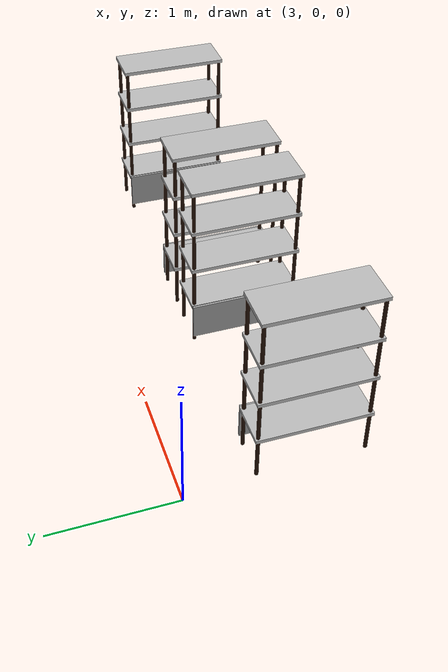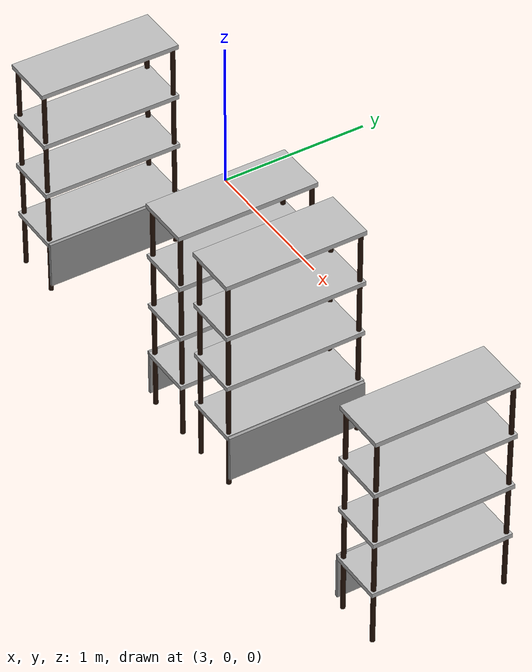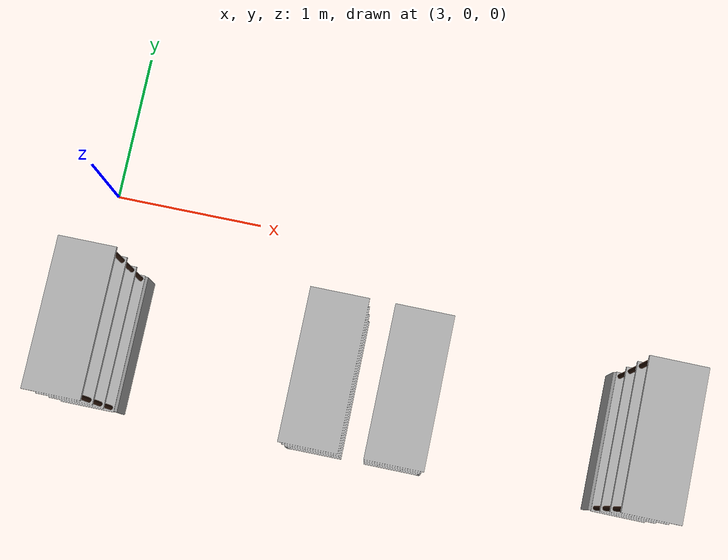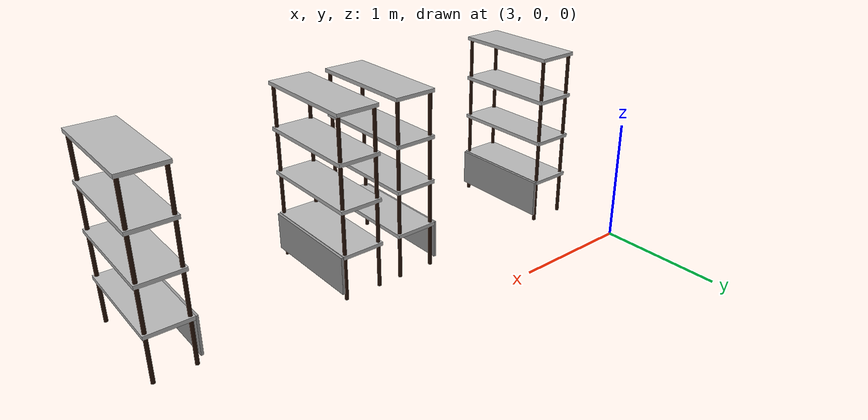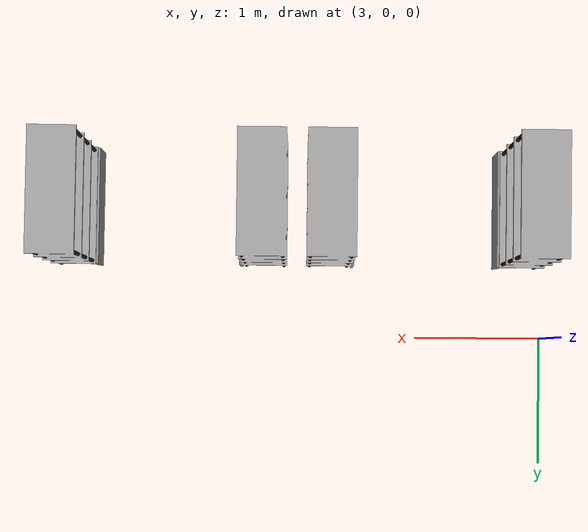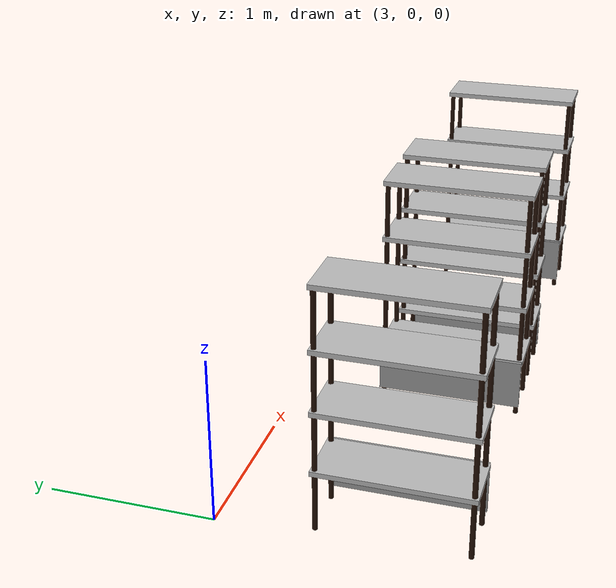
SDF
<sdf version="1.7">
 <world name="default">
  <model name="rack_0">
   <link name="link">
    <inertial>
     <mass>0.1</mass>
     <inertia><ixx>0.01857</ixx><ixy>0</ixy><ixz>0</ixz><iyy>0.015598</iyy><iyz>0</iyz><izz>0.00305</izz></inertia>
    </inertial>
    <visual name="visual1">
     <cast_shadows>0</cast_shadows>
     <geometry><mesh><uri>model://rack/meshes/rack.dae</uri></mesh></geometry>
     <material>
      <shader type="pixel"><normal_map>__default__</normal_map></shader>
      <emissive>0 0 0 1</emissive>
     </material>
    </visual>
    <visual name="visual_2">
     <cast_shadows>0</cast_shadows>
     <geometry><box><size>0.02 0.9 0.31</size></box></geometry>
     <material>
      <lighting>1</lighting>
      <script><uri>file://media/materials/scripts/gazebo.material</uri><name>Gazebo/Grey</name></script>
      <shader type="pixel"><normal_map>__default__</normal_map></shader>
      <ambient>0.3 0.3 0.3 1</ambient>
      <diffuse>0.7 0.7 0.7 1</diffuse>
      <specular>0.01 0.01 0.01 1</specular>
      <emissive>0 0 0 1</emissive>
     </material>
     <pose>-0.185 0 0.22 0 -0 0</pose>
    </visual>
    <collision name="collision_7">
     <pose>0 0 0.36 0 1.57 1.57</pose>
     <geometry><box><size>0.05 0.35 0.91</size></box></geometry>
     <surface>
      <friction>
       <ode><mu>1</mu><mu2>1</mu2><fdir1>0 0 0</fdir1><slip1>0</slip1><slip2>0</slip2></ode>
       <torsional>
        <coefficient>1</coefficient>
        <patch_radius>0</patch_radius>
        <surface_radius>0</surface_radius>
        <use_patch_radius>1</use_patch_radius>
        <ode><slip>0</slip></ode>
       </torsional>
      </friction>
      <bounce><restitution_coefficient>0</restitution_coefficient><threshold>1e+06</threshold></bounce>
      <contact>
       <collide_without_contact>0</collide_without_contact>
       <collide_without_contact_bitmask>1</collide_without_contact_bitmask>
       <collide_bitmask>1</collide_bitmask>
       <ode>
        <soft_cfm>0</soft_cfm>
        <soft_erp>0.2</soft_erp>
        <kp>1e+15</kp>
        <kd>1e+13</kd>
        <max_vel>0.01</max_vel>
        <min_depth>0</min_depth>
       </ode>
       <bullet>
        <split_impulse>1</split_impulse>
        <split_impulse_penetration_threshold>-0.01</split_impulse_penetration_threshold>
        <soft_cfm>0</soft_cfm>
        <soft_erp>0.2</soft_erp>
        <kp>1e+13</kp>
        <kd>1</kd>
       </bullet>
      </contact>
     </surface>
    </collision>
    <collision name="collision_6">
     <pose>0 0 0.725 0 1.57 1.57</pose>
     <geometry><box><size>0.05 0.35 0.91</size></box></geometry>
     <surface>
      <friction>
       <ode><mu>1</mu><mu2>1</mu2><fdir1>0 0 0</fdir1><slip1>0</slip1><slip2>0</slip2></ode>
       <torsional>
        <coefficient>1</coefficient>
        <patch_radius>0</patch_radius>
        <surface_radius>0</surface_radius>
        <use_patch_radius>1</use_patch_radius>
        <ode><slip>0</slip></ode>
       </torsional>
      </friction>
      <bounce><restitution_coefficient>0</restitution_coefficient><threshold>1e+06</threshold></bounce>
      <contact>
       <collide_without_contact>0</collide_without_contact>
       <collide_without_contact_bitmask>1</collide_without_contact_bitmask>
       <collide_bitmask>1</collide_bitmask>
       <ode>
        <soft_cfm>0</soft_cfm>
        <soft_erp>0.2</soft_erp>
        <kp>1e+15</kp>
        <kd>1e+13</kd>
        <max_vel>0.01</max_vel>
        <min_depth>0</min_depth>
       </ode>
       <bullet>
        <split_impulse>1</split_impulse>
        <split_impulse_penetration_threshold>-0.01</split_impulse_penetration_threshold>
        <soft_cfm>0</soft_cfm>
        <soft_erp>0.2</soft_erp>
        <kp>1e+13</kp>
        <kd>1</kd>
       </bullet>
      </contact>
     </surface>
    </collision>
    <collision name="collision_5">
     <pose>0 0 1.09 0 1.57 1.57</pose>
     <geometry><box><size>0.05 0.35 0.91</size></box></geometry>
     <surface>
      <friction>
       <ode><mu>1</mu><mu2>1</mu2><fdir1>0 0 0</fdir1><slip1>0</slip1><slip2>0</slip2></ode>
       <torsional>
        <coefficient>1</coefficient>
        <patch_radius>0</patch_radius>
        <surface_radius>0</surface_radius>
        <use_patch_radius>1</use_patch_radius>
        <ode><slip>0</slip></ode>
       </torsional>
      </friction>
      <bounce><restitution_coefficient>0</restitution_coefficient><threshold>1e+06</threshold></bounce>
      <contact>
       <collide_without_contact>0</collide_without_contact>
       <collide_without_contact_bitmask>1</collide_without_contact_bitmask>
       <collide_bitmask>1</collide_bitmask>
       <ode>
        <soft_cfm>0</soft_cfm>
        <soft_erp>0.2</soft_erp>
        <kp>1e+15</kp>
        <kd>1e+13</kd>
        <max_vel>0.01</max_vel>
        <min_depth>0</min_depth>
       </ode>
       <bullet>
        <split_impulse>1</split_impulse>
        <split_impulse_penetration_threshold>-0.01</split_impulse_penetration_threshold>
        <soft_cfm>0</soft_cfm>
        <soft_erp>0.2</soft_erp>
        <kp>1e+13</kp>
        <kd>1</kd>
       </bullet>
      </contact>
     </surface>
    </collision>
    <collision name="collision_3">
     <pose>0 0 1.455 0 1.57 1.57</pose>
     <geometry><box><size>0.05 0.35 0.91</size></box></geometry>
     <surface>
      <friction>
       <ode><mu>1</mu><mu2>1</mu2><fdir1>0 0 0</fdir1><slip1>0</slip1><slip2>0</slip2></ode>
       <torsional>
        <coefficient>1</coefficient>
        <patch_radius>0</patch_radius>
        <surface_radius>0</surface_radius>
        <use_patch_radius>1</use_patch_radius>
        <ode><slip>0</slip></ode>
       </torsional>
      </friction>
      <bounce><restitution_coefficient>0</restitution_coefficient><threshold>1e+06</threshold></bounce>
      <contact>
       <collide_without_contact>0</collide_without_contact>
       <collide_without_contact_bitmask>1</collide_without_contact_bitmask>
       <collide_bitmask>1</collide_bitmask>
       <ode>
        <soft_cfm>0</soft_cfm>
        <soft_erp>0.2</soft_erp>
        <kp>1e+15</kp>
        <kd>1e+13</kd>
        <max_vel>0.01</max_vel>
        <min_depth>0</min_depth>
       </ode>
       <bullet>
        <split_impulse>1</split_impulse>
        <split_impulse_penetration_threshold>-0.01</split_impulse_penetration_threshold>
        <soft_cfm>0</soft_cfm>
        <soft_erp>0.2</soft_erp>
        <kp>1e+13</kp>
        <kd>1</kd>
       </bullet>
      </contact>
     </surface>
    </collision>
    <collision name="collision_1">
     <pose>0 0.43 0.73 0 -0 1.57</pose>
     <geometry><box><size>0.05 0.36 1.46</size></box></geometry>
     <surface>
      <friction>
       <ode><mu>1</mu><mu2>1</mu2><fdir1>0 0 0</fdir1><slip1>0</slip1><slip2>0</slip2></ode>
       <torsional>
        <coefficient>1</coefficient>
        <patch_radius>0</patch_radius>
        <surface_radius>0</surface_radius>
        <use_patch_radius>1</use_patch_radius>
        <ode><slip>0</slip></ode>
       </torsional>
      </friction>
      <bounce><restitution_coefficient>0</restitution_coefficient><threshold>1e+06</threshold></bounce>
      <contact>
       <collide_without_contact>0</collide_without_contact>
       <collide_without_contact_bitmask>1</collide_without_contact_bitmask>
       <collide_bitmask>1</collide_bitmask>
       <ode>
        <soft_cfm>0</soft_cfm>
        <soft_erp>0.2</soft_erp>
        <kp>1e+15</kp>
        <kd>1e+13</kd>
        <max_vel>0.01</max_vel>
        <min_depth>0</min_depth>
       </ode>
       <bullet>
        <split_impulse>1</split_impulse>
        <split_impulse_penetration_threshold>-0.01</split_impulse_penetration_threshold>
        <soft_cfm>0</soft_cfm>
        <soft_erp>0.2</soft_erp>
        <kp>1e+13</kp>
        <kd>1</kd>
       </bullet>
      </contact>
     </surface>
    </collision>
    <collision name="collision_2">
     <pose>0 -0.43 0.73 0 -0 1.57</pose>
     <geometry><box><size>0.05 0.36 1.46</size></box></geometry>
     <surface>
      <friction>
       <ode><mu>1</mu><mu2>1</mu2><fdir1>0 0 0</fdir1><slip1>0</slip1><slip2>0</slip2></ode>
       <torsional>
        <coefficient>1</coefficient>
        <patch_radius>0</patch_radius>
        <surface_radius>0</surface_radius>
        <use_patch_radius>1</use_patch_radius>
        <ode><slip>0</slip></ode>
       </torsional>
      </friction>
      <bounce><restitution_coefficient>0</restitution_coefficient><threshold>1e+06</threshold></bounce>
      <contact>
       <collide_without_contact>0</collide_without_contact>
       <collide_without_contact_bitmask>1</collide_without_contact_bitmask>
       <collide_bitmask>1</collide_bitmask>
       <ode>
        <soft_cfm>0</soft_cfm>
        <soft_erp>0.2</soft_erp>
        <kp>1e+15</kp>
        <kd>1e+13</kd>
        <max_vel>0.01</max_vel>
        <min_depth>0</min_depth>
       </ode>
       <bullet>
        <split_impulse>1</split_impulse>
        <split_impulse_penetration_threshold>-0.01</split_impulse_penetration_threshold>
        <soft_cfm>0</soft_cfm>
        <soft_erp>0.2</soft_erp>
        <kp>1e+13</kp>
        <kd>1</kd>
       </bullet>
      </contact>
     </surface>
    </collision>
    <collision name="collision">
     <pose>-0.185 0 0.22 0 -0 0</pose>
     <geometry><box><size>0.02 0.9 0.31</size></box></geometry>
     <surface>
      <friction>
       <ode><mu>1</mu><mu2>1</mu2><fdir1>0 0 0</fdir1><slip1>0</slip1><slip2>0</slip2></ode>
       <torsional>
        <coefficient>1</coefficient>
        <patch_radius>0</patch_radius>
        <surface_radius>0</surface_radius>
        <use_patch_radius>1</use_patch_radius>
        <ode><slip>0</slip></ode>
       </torsional>
      </friction>
      <bounce><restitution_coefficient>0</restitution_coefficient><threshold>1e+06</threshold></bounce>
      <contact>
       <collide_without_contact>0</collide_without_contact>
       <collide_without_contact_bitmask>1</collide_without_contact_bitmask>
       <collide_bitmask>1</collide_bitmask>
       <ode>
        <soft_cfm>0</soft_cfm>
        <soft_erp>0.2</soft_erp>
        <kp>1e+15</kp>
        <kd>1e+13</kd>
        <max_vel>0.01</max_vel>
        <min_depth>0</min_depth>
       </ode>
       <bullet>
        <split_impulse>1</split_impulse>
        <split_impulse_penetration_threshold>-0.01</split_impulse_penetration_threshold>
        <soft_cfm>0</soft_cfm>
        <soft_erp>0.2</soft_erp>
        <kp>1e+13</kp>
        <kd>1</kd>
       </bullet>
      </contact>
     </surface>
    </collision>
   </link>
   <static>0</static>
   <pose>6.68291 -0.999721 0.032294 -0.000183 0.000418 -0.007318</pose>
  </model>
  <model name="rack_5">
   <link name="link">
    <inertial>
     <mass>0.1</mass>
     <inertia><ixx>0.01857</ixx><ixy>0</ixy><ixz>0</ixz><iyy>0.015598</iyy><iyz>0</iyz><izz>0.00305</izz></inertia>
    </inertial>
    <visual name="visual1">
     <cast_shadows>0</cast_shadows>
     <geometry><mesh><uri>model://rack/meshes/rack.dae</uri></mesh></geometry>
     <material>
      <shader type="pixel"><normal_map>__default__</normal_map></shader>
      <emissive>0 0 0 1</emissive>
     </material>
    </visual>
    <visual name="visual_2">
     <cast_shadows>0</cast_shadows>
     <geometry><box><size>0.02 0.9 0.31</size></box></geometry>
     <material>
      <lighting>1</lighting>
      <script><uri>file://media/materials/scripts/gazebo.material</uri><name>Gazebo/Grey</name></script>
      <shader type="pixel"><normal_map>__default__</normal_map></shader>
      <ambient>0.3 0.3 0.3 1</ambient>
      <diffuse>0.7 0.7 0.7 1</diffuse>
      <specular>0.01 0.01 0.01 1</specular>
      <emissive>0 0 0 1</emissive>
     </material>
     <pose>-0.185 0 0.22 0 -0 0</pose>
    </visual>
    <collision name="collision_7">
     <pose>0 0 0.36 0 1.57 1.57</pose>
     <geometry><box><size>0.05 0.35 0.91</size></box></geometry>
     <surface>
      <friction>
       <ode><mu>1</mu><mu2>1</mu2><fdir1>0 0 0</fdir1><slip1>0</slip1><slip2>0</slip2></ode>
       <torsional>
        <coefficient>1</coefficient>
        <patch_radius>0</patch_radius>
        <surface_radius>0</surface_radius>
        <use_patch_radius>1</use_patch_radius>
        <ode><slip>0</slip></ode>
       </torsional>
      </friction>
      <bounce><restitution_coefficient>0</restitution_coefficient><threshold>1e+06</threshold></bounce>
      <contact>
       <collide_without_contact>0</collide_without_contact>
       <collide_without_contact_bitmask>1</collide_without_contact_bitmask>
       <collide_bitmask>1</collide_bitmask>
       <ode>
        <soft_cfm>0</soft_cfm>
        <soft_erp>0.2</soft_erp>
        <kp>1e+15</kp>
        <kd>1e+13</kd>
        <max_vel>0.01</max_vel>
        <min_depth>0</min_depth>
       </ode>
       <bullet>
        <split_impulse>1</split_impulse>
        <split_impulse_penetration_threshold>-0.01</split_impulse_penetration_threshold>
        <soft_cfm>0</soft_cfm>
        <soft_erp>0.2</soft_erp>
        <kp>1e+13</kp>
        <kd>1</kd>
       </bullet>
      </contact>
     </surface>
    </collision>
    <collision name="collision_6">
     <pose>0 0 0.725 0 1.57 1.57</pose>
     <geometry><box><size>0.05 0.35 0.91</size></box></geometry>
     <surface>
      <friction>
       <ode><mu>1</mu><mu2>1</mu2><fdir1>0 0 0</fdir1><slip1>0</slip1><slip2>0</slip2></ode>
       <torsional>
        <coefficient>1</coefficient>
        <patch_radius>0</patch_radius>
        <surface_radius>0</surface_radius>
        <use_patch_radius>1</use_patch_radius>
        <ode><slip>0</slip></ode>
       </torsional>
      </friction>
      <bounce><restitution_coefficient>0</restitution_coefficient><threshold>1e+06</threshold></bounce>
      <contact>
       <collide_without_contact>0</collide_without_contact>
       <collide_without_contact_bitmask>1</collide_without_contact_bitmask>
       <collide_bitmask>1</collide_bitmask>
       <ode>
        <soft_cfm>0</soft_cfm>
        <soft_erp>0.2</soft_erp>
        <kp>1e+15</kp>
        <kd>1e+13</kd>
        <max_vel>0.01</max_vel>
        <min_depth>0</min_depth>
       </ode>
       <bullet>
        <split_impulse>1</split_impulse>
        <split_impulse_penetration_threshold>-0.01</split_impulse_penetration_threshold>
        <soft_cfm>0</soft_cfm>
        <soft_erp>0.2</soft_erp>
        <kp>1e+13</kp>
        <kd>1</kd>
       </bullet>
      </contact>
     </surface>
    </collision>
    <collision name="collision_5">
     <pose>0 0 1.09 0 1.57 1.57</pose>
     <geometry><box><size>0.05 0.35 0.91</size></box></geometry>
     <surface>
      <friction>
       <ode><mu>1</mu><mu2>1</mu2><fdir1>0 0 0</fdir1><slip1>0</slip1><slip2>0</slip2></ode>
       <torsional>
        <coefficient>1</coefficient>
        <patch_radius>0</patch_radius>
        <surface_radius>0</surface_radius>
        <use_patch_radius>1</use_patch_radius>
        <ode><slip>0</slip></ode>
       </torsional>
      </friction>
      <bounce><restitution_coefficient>0</restitution_coefficient><threshold>1e+06</threshold></bounce>
      <contact>
       <collide_without_contact>0</collide_without_contact>
       <collide_without_contact_bitmask>1</collide_without_contact_bitmask>
       <collide_bitmask>1</collide_bitmask>
       <ode>
        <soft_cfm>0</soft_cfm>
        <soft_erp>0.2</soft_erp>
        <kp>1e+15</kp>
        <kd>1e+13</kd>
        <max_vel>0.01</max_vel>
        <min_depth>0</min_depth>
       </ode>
       <bullet>
        <split_impulse>1</split_impulse>
        <split_impulse_penetration_threshold>-0.01</split_impulse_penetration_threshold>
        <soft_cfm>0</soft_cfm>
        <soft_erp>0.2</soft_erp>
        <kp>1e+13</kp>
        <kd>1</kd>
       </bullet>
      </contact>
     </surface>
    </collision>
    <collision name="collision_3">
     <pose>0 0 1.455 0 1.57 1.57</pose>
     <geometry><box><size>0.05 0.35 0.91</size></box></geometry>
     <surface>
      <friction>
       <ode><mu>1</mu><mu2>1</mu2><fdir1>0 0 0</fdir1><slip1>0</slip1><slip2>0</slip2></ode>
       <torsional>
        <coefficient>1</coefficient>
        <patch_radius>0</patch_radius>
        <surface_radius>0</surface_radius>
        <use_patch_radius>1</use_patch_radius>
        <ode><slip>0</slip></ode>
       </torsional>
      </friction>
      <bounce><restitution_coefficient>0</restitution_coefficient><threshold>1e+06</threshold></bounce>
      <contact>
       <collide_without_contact>0</collide_without_contact>
       <collide_without_contact_bitmask>1</collide_without_contact_bitmask>
       <collide_bitmask>1</collide_bitmask>
       <ode>
        <soft_cfm>0</soft_cfm>
        <soft_erp>0.2</soft_erp>
        <kp>1e+15</kp>
        <kd>1e+13</kd>
        <max_vel>0.01</max_vel>
        <min_depth>0</min_depth>
       </ode>
       <bullet>
        <split_impulse>1</split_impulse>
        <split_impulse_penetration_threshold>-0.01</split_impulse_penetration_threshold>
        <soft_cfm>0</soft_cfm>
        <soft_erp>0.2</soft_erp>
        <kp>1e+13</kp>
        <kd>1</kd>
       </bullet>
      </contact>
     </surface>
    </collision>
    <collision name="collision_1">
     <pose>0 0.43 0.73 0 -0 1.57</pose>
     <geometry><box><size>0.05 0.36 1.46</size></box></geometry>
     <surface>
      <friction>
       <ode><mu>1</mu><mu2>1</mu2><fdir1>0 0 0</fdir1><slip1>0</slip1><slip2>0</slip2></ode>
       <torsional>
        <coefficient>1</coefficient>
        <patch_radius>0</patch_radius>
        <surface_radius>0</surface_radius>
        <use_patch_radius>1</use_patch_radius>
        <ode><slip>0</slip></ode>
       </torsional>
      </friction>
      <bounce><restitution_coefficient>0</restitution_coefficient><threshold>1e+06</threshold></bounce>
      <contact>
       <collide_without_contact>0</collide_without_contact>
       <collide_without_contact_bitmask>1</collide_without_contact_bitmask>
       <collide_bitmask>1</collide_bitmask>
       <ode>
        <soft_cfm>0</soft_cfm>
        <soft_erp>0.2</soft_erp>
        <kp>1e+15</kp>
        <kd>1e+13</kd>
        <max_vel>0.01</max_vel>
        <min_depth>0</min_depth>
       </ode>
       <bullet>
        <split_impulse>1</split_impulse>
        <split_impulse_penetration_threshold>-0.01</split_impulse_penetration_threshold>
        <soft_cfm>0</soft_cfm>
        <soft_erp>0.2</soft_erp>
        <kp>1e+13</kp>
        <kd>1</kd>
       </bullet>
      </contact>
     </surface>
    </collision>
    <collision name="collision_2">
     <pose>0 -0.43 0.73 0 -0 1.57</pose>
     <geometry><box><size>0.05 0.36 1.46</size></box></geometry>
     <surface>
      <friction>
       <ode><mu>1</mu><mu2>1</mu2><fdir1>0 0 0</fdir1><slip1>0</slip1><slip2>0</slip2></ode>
       <torsional>
        <coefficient>1</coefficient>
        <patch_radius>0</patch_radius>
        <surface_radius>0</surface_radius>
        <use_patch_radius>1</use_patch_radius>
        <ode><slip>0</slip></ode>
       </torsional>
      </friction>
      <bounce><restitution_coefficient>0</restitution_coefficient><threshold>1e+06</threshold></bounce>
      <contact>
       <collide_without_contact>0</collide_without_contact>
       <collide_without_contact_bitmask>1</collide_without_contact_bitmask>
       <collide_bitmask>1</collide_bitmask>
       <ode>
        <soft_cfm>0</soft_cfm>
        <soft_erp>0.2</soft_erp>
        <kp>1e+15</kp>
        <kd>1e+13</kd>
        <max_vel>0.01</max_vel>
        <min_depth>0</min_depth>
       </ode>
       <bullet>
        <split_impulse>1</split_impulse>
        <split_impulse_penetration_threshold>-0.01</split_impulse_penetration_threshold>
        <soft_cfm>0</soft_cfm>
        <soft_erp>0.2</soft_erp>
        <kp>1e+13</kp>
        <kd>1</kd>
       </bullet>
      </contact>
     </surface>
    </collision>
    <collision name="collision">
     <pose>-0.185 0 0.22 0 -0 0</pose>
     <geometry><box><size>0.02 0.9 0.31</size></box></geometry>
     <surface>
      <friction>
       <ode><mu>1</mu><mu2>1</mu2><fdir1>0 0 0</fdir1><slip1>0</slip1><slip2>0</slip2></ode>
       <torsional>
        <coefficient>1</coefficient>
        <patch_radius>0</patch_radius>
        <surface_radius>0</surface_radius>
        <use_patch_radius>1</use_patch_radius>
        <ode><slip>0</slip></ode>
       </torsional>
      </friction>
      <bounce><restitution_coefficient>0</restitution_coefficient><threshold>1e+06</threshold></bounce>
      <contact>
       <collide_without_contact>0</collide_without_contact>
       <collide_without_contact_bitmask>1</collide_without_contact_bitmask>
       <collide_bitmask>1</collide_bitmask>
       <ode>
        <soft_cfm>0</soft_cfm>
        <soft_erp>0.2</soft_erp>
        <kp>1e+15</kp>
        <kd>1e+13</kd>
        <max_vel>0.01</max_vel>
        <min_depth>0</min_depth>
       </ode>
       <bullet>
        <split_impulse>1</split_impulse>
        <split_impulse_penetration_threshold>-0.01</split_impulse_penetration_threshold>
        <soft_cfm>0</soft_cfm>
        <soft_erp>0.2</soft_erp>
        <kp>1e+13</kp>
        <kd>1</kd>
       </bullet>
      </contact>
     </surface>
    </collision>
   </link>
   <static>0</static>
   <pose>5.2 -1 0.033602 0 -0 3.14</pose>
  </model>
  <model name="rack_9">
   <link name="link">
    <inertial>
     <mass>0.1</mass>
     <inertia><ixx>0.01857</ixx><ixy>0</ixy><ixz>0</ixz><iyy>0.015598</iyy><iyz>0</iyz><izz>0.00305</izz></inertia>
    </inertial>
    <visual name="visual1">
     <cast_shadows>0</cast_shadows>
     <geometry><mesh><uri>model://rack/meshes/rack.dae</uri></mesh></geometry>
     <material>
      <shader type="pixel"><normal_map>__default__</normal_map></shader>
      <emissive>0 0 0 1</emissive>
     </material>
    </visual>
    <visual name="visual_2">
     <cast_shadows>0</cast_shadows>
     <geometry><box><size>0.02 0.9 0.31</size></box></geometry>
     <material>
      <lighting>1</lighting>
      <script><uri>file://media/materials/scripts/gazebo.material</uri><name>Gazebo/Grey</name></script>
      <shader type="pixel"><normal_map>__default__</normal_map></shader>
      <ambient>0.3 0.3 0.3 1</ambient>
      <diffuse>0.7 0.7 0.7 1</diffuse>
      <specular>0.01 0.01 0.01 1</specular>
      <emissive>0 0 0 1</emissive>
     </material>
     <pose>-0.185 0 0.22 0 -0 0</pose>
    </visual>
    <collision name="collision_7">
     <pose>0 0 0.36 0 1.57 1.57</pose>
     <geometry><box><size>0.05 0.35 0.91</size></box></geometry>
     <surface>
      <friction>
       <ode><mu>1</mu><mu2>1</mu2><fdir1>0 0 0</fdir1><slip1>0</slip1><slip2>0</slip2></ode>
       <torsional>
        <coefficient>1</coefficient>
        <patch_radius>0</patch_radius>
        <surface_radius>0</surface_radius>
        <use_patch_radius>1</use_patch_radius>
        <ode><slip>0</slip></ode>
       </torsional>
      </friction>
      <bounce><restitution_coefficient>0</restitution_coefficient><threshold>1e+06</threshold></bounce>
      <contact>
       <collide_without_contact>0</collide_without_contact>
       <collide_without_contact_bitmask>1</collide_without_contact_bitmask>
       <collide_bitmask>1</collide_bitmask>
       <ode>
        <soft_cfm>0</soft_cfm>
        <soft_erp>0.2</soft_erp>
        <kp>1e+15</kp>
        <kd>1e+13</kd>
        <max_vel>0.01</max_vel>
        <min_depth>0</min_depth>
       </ode>
       <bullet>
        <split_impulse>1</split_impulse>
        <split_impulse_penetration_threshold>-0.01</split_impulse_penetration_threshold>
        <soft_cfm>0</soft_cfm>
        <soft_erp>0.2</soft_erp>
        <kp>1e+13</kp>
        <kd>1</kd>
       </bullet>
      </contact>
     </surface>
    </collision>
    <collision name="collision_6">
     <pose>0 0 0.725 0 1.57 1.57</pose>
     <geometry><box><size>0.05 0.35 0.91</size></box></geometry>
     <surface>
      <friction>
       <ode><mu>1</mu><mu2>1</mu2><fdir1>0 0 0</fdir1><slip1>0</slip1><slip2>0</slip2></ode>
       <torsional>
        <coefficient>1</coefficient>
        <patch_radius>0</patch_radius>
        <surface_radius>0</surface_radius>
        <use_patch_radius>1</use_patch_radius>
        <ode><slip>0</slip></ode>
       </torsional>
      </friction>
      <bounce><restitution_coefficient>0</restitution_coefficient><threshold>1e+06</threshold></bounce>
      <contact>
       <collide_without_contact>0</collide_without_contact>
       <collide_without_contact_bitmask>1</collide_without_contact_bitmask>
       <collide_bitmask>1</collide_bitmask>
       <ode>
        <soft_cfm>0</soft_cfm>
        <soft_erp>0.2</soft_erp>
        <kp>1e+15</kp>
        <kd>1e+13</kd>
        <max_vel>0.01</max_vel>
        <min_depth>0</min_depth>
       </ode>
       <bullet>
        <split_impulse>1</split_impulse>
        <split_impulse_penetration_threshold>-0.01</split_impulse_penetration_threshold>
        <soft_cfm>0</soft_cfm>
        <soft_erp>0.2</soft_erp>
        <kp>1e+13</kp>
        <kd>1</kd>
       </bullet>
      </contact>
     </surface>
    </collision>
    <collision name="collision_5">
     <pose>0 0 1.09 0 1.57 1.57</pose>
     <geometry><box><size>0.05 0.35 0.91</size></box></geometry>
     <surface>
      <friction>
       <ode><mu>1</mu><mu2>1</mu2><fdir1>0 0 0</fdir1><slip1>0</slip1><slip2>0</slip2></ode>
       <torsional>
        <coefficient>1</coefficient>
        <patch_radius>0</patch_radius>
        <surface_radius>0</surface_radius>
        <use_patch_radius>1</use_patch_radius>
        <ode><slip>0</slip></ode>
       </torsional>
      </friction>
      <bounce><restitution_coefficient>0</restitution_coefficient><threshold>1e+06</threshold></bounce>
      <contact>
       <collide_without_contact>0</collide_without_contact>
       <collide_without_contact_bitmask>1</collide_without_contact_bitmask>
       <collide_bitmask>1</collide_bitmask>
       <ode>
        <soft_cfm>0</soft_cfm>
        <soft_erp>0.2</soft_erp>
        <kp>1e+15</kp>
        <kd>1e+13</kd>
        <max_vel>0.01</max_vel>
        <min_depth>0</min_depth>
       </ode>
       <bullet>
        <split_impulse>1</split_impulse>
        <split_impulse_penetration_threshold>-0.01</split_impulse_penetration_threshold>
        <soft_cfm>0</soft_cfm>
        <soft_erp>0.2</soft_erp>
        <kp>1e+13</kp>
        <kd>1</kd>
       </bullet>
      </contact>
     </surface>
    </collision>
    <collision name="collision_3">
     <pose>0 0 1.455 0 1.57 1.57</pose>
     <geometry><box><size>0.05 0.35 0.91</size></box></geometry>
     <surface>
      <friction>
       <ode><mu>1</mu><mu2>1</mu2><fdir1>0 0 0</fdir1><slip1>0</slip1><slip2>0</slip2></ode>
       <torsional>
        <coefficient>1</coefficient>
        <patch_radius>0</patch_radius>
        <surface_radius>0</surface_radius>
        <use_patch_radius>1</use_patch_radius>
        <ode><slip>0</slip></ode>
       </torsional>
      </friction>
      <bounce><restitution_coefficient>0</restitution_coefficient><threshold>1e+06</threshold></bounce>
      <contact>
       <collide_without_contact>0</collide_without_contact>
       <collide_without_contact_bitmask>1</collide_without_contact_bitmask>
       <collide_bitmask>1</collide_bitmask>
       <ode>
        <soft_cfm>0</soft_cfm>
        <soft_erp>0.2</soft_erp>
        <kp>1e+15</kp>
        <kd>1e+13</kd>
        <max_vel>0.01</max_vel>
        <min_depth>0</min_depth>
       </ode>
       <bullet>
        <split_impulse>1</split_impulse>
        <split_impulse_penetration_threshold>-0.01</split_impulse_penetration_threshold>
        <soft_cfm>0</soft_cfm>
        <soft_erp>0.2</soft_erp>
        <kp>1e+13</kp>
        <kd>1</kd>
       </bullet>
      </contact>
     </surface>
    </collision>
    <collision name="collision_1">
     <pose>0 0.43 0.73 0 -0 1.57</pose>
     <geometry><box><size>0.05 0.36 1.46</size></box></geometry>
     <surface>
      <friction>
       <ode><mu>1</mu><mu2>1</mu2><fdir1>0 0 0</fdir1><slip1>0</slip1><slip2>0</slip2></ode>
       <torsional>
        <coefficient>1</coefficient>
        <patch_radius>0</patch_radius>
        <surface_radius>0</surface_radius>
        <use_patch_radius>1</use_patch_radius>
        <ode><slip>0</slip></ode>
       </torsional>
      </friction>
      <bounce><restitution_coefficient>0</restitution_coefficient><threshold>1e+06</threshold></bounce>
      <contact>
       <collide_without_contact>0</collide_without_contact>
       <collide_without_contact_bitmask>1</collide_without_contact_bitmask>
       <collide_bitmask>1</collide_bitmask>
       <ode>
        <soft_cfm>0</soft_cfm>
        <soft_erp>0.2</soft_erp>
        <kp>1e+15</kp>
        <kd>1e+13</kd>
        <max_vel>0.01</max_vel>
        <min_depth>0</min_depth>
       </ode>
       <bullet>
        <split_impulse>1</split_impulse>
        <split_impulse_penetration_threshold>-0.01</split_impulse_penetration_threshold>
        <soft_cfm>0</soft_cfm>
        <soft_erp>0.2</soft_erp>
        <kp>1e+13</kp>
        <kd>1</kd>
       </bullet>
      </contact>
     </surface>
    </collision>
    <collision name="collision_2">
     <pose>0 -0.43 0.73 0 -0 1.57</pose>
     <geometry><box><size>0.05 0.36 1.46</size></box></geometry>
     <surface>
      <friction>
       <ode><mu>1</mu><mu2>1</mu2><fdir1>0 0 0</fdir1><slip1>0</slip1><slip2>0</slip2></ode>
       <torsional>
        <coefficient>1</coefficient>
        <patch_radius>0</patch_radius>
        <surface_radius>0</surface_radius>
        <use_patch_radius>1</use_patch_radius>
        <ode><slip>0</slip></ode>
       </torsional>
      </friction>
      <bounce><restitution_coefficient>0</restitution_coefficient><threshold>1e+06</threshold></bounce>
      <contact>
       <collide_without_contact>0</collide_without_contact>
       <collide_without_contact_bitmask>1</collide_without_contact_bitmask>
       <collide_bitmask>1</collide_bitmask>
       <ode>
        <soft_cfm>0</soft_cfm>
        <soft_erp>0.2</soft_erp>
        <kp>1e+15</kp>
        <kd>1e+13</kd>
        <max_vel>0.01</max_vel>
        <min_depth>0</min_depth>
       </ode>
       <bullet>
        <split_impulse>1</split_impulse>
        <split_impulse_penetration_threshold>-0.01</split_impulse_penetration_threshold>
        <soft_cfm>0</soft_cfm>
        <soft_erp>0.2</soft_erp>
        <kp>1e+13</kp>
        <kd>1</kd>
       </bullet>
      </contact>
     </surface>
    </collision>
    <collision name="collision">
     <pose>-0.185 0 0.22 0 -0 0</pose>
     <geometry><box><size>0.02 0.9 0.31</size></box></geometry>
     <surface>
      <friction>
       <ode><mu>1</mu><mu2>1</mu2><fdir1>0 0 0</fdir1><slip1>0</slip1><slip2>0</slip2></ode>
       <torsional>
        <coefficient>1</coefficient>
        <patch_radius>0</patch_radius>
        <surface_radius>0</surface_radius>
        <use_patch_radius>1</use_patch_radius>
        <ode><slip>0</slip></ode>
       </torsional>
      </friction>
      <bounce><restitution_coefficient>0</restitution_coefficient><threshold>1e+06</threshold></bounce>
      <contact>
       <collide_without_contact>0</collide_without_contact>
       <collide_without_contact_bitmask>1</collide_without_contact_bitmask>
       <collide_bitmask>1</collide_bitmask>
       <ode>
        <soft_cfm>0</soft_cfm>
        <soft_erp>0.2</soft_erp>
        <kp>1e+15</kp>
        <kd>1e+13</kd>
        <max_vel>0.01</max_vel>
        <min_depth>0</min_depth>
       </ode>
       <bullet>
        <split_impulse>1</split_impulse>
        <split_impulse_penetration_threshold>-0.01</split_impulse_penetration_threshold>
        <soft_cfm>0</soft_cfm>
        <soft_erp>0.2</soft_erp>
        <kp>1e+13</kp>
        <kd>1</kd>
       </bullet>
      </contact>
     </surface>
    </collision>
   </link>
   <static>0</static>
   <pose>4.7 -1 0.031151 0 -0 0</pose>
  </model>
  <model name="rack_13">
   <link name="link">
    <inertial>
     <mass>0.1</mass>
     <inertia><ixx>0.01857</ixx><ixy>0</ixy><ixz>0</ixz><iyy>0.015598</iyy><iyz>0</iyz><izz>0.00305</izz></inertia>
    </inertial>
    <visual name="visual1">
     <cast_shadows>0</cast_shadows>
     <geometry><mesh><uri>model://rack/meshes/rack.dae</uri></mesh></geometry>
     <material>
      <shader type="pixel"><normal_map>__default__</normal_map></shader>
      <emissive>0 0 0 1</emissive>
     </material>
    </visual>
    <visual name="visual_2">
     <cast_shadows>0</cast_shadows>
     <geometry><box><size>0.02 0.9 0.31</size></box></geometry>
     <material>
      <lighting>1</lighting>
      <script><uri>file://media/materials/scripts/gazebo.material</uri><name>Gazebo/Grey</name></script>
      <shader type="pixel"><normal_map>__default__</normal_map></shader>
      <ambient>0.3 0.3 0.3 1</ambient>
      <diffuse>0.7 0.7 0.7 1</diffuse>
      <specular>0.01 0.01 0.01 1</specular>
      <emissive>0 0 0 1</emissive>
     </material>
     <pose>-0.185 0 0.22 0 -0 0</pose>
    </visual>
    <collision name="collision_7">
     <pose>0 0 0.36 0 1.57 1.57</pose>
     <geometry><box><size>0.05 0.35 0.91</size></box></geometry>
     <surface>
      <friction>
       <ode><mu>1</mu><mu2>1</mu2><fdir1>0 0 0</fdir1><slip1>0</slip1><slip2>0</slip2></ode>
       <torsional>
        <coefficient>1</coefficient>
        <patch_radius>0</patch_radius>
        <surface_radius>0</surface_radius>
        <use_patch_radius>1</use_patch_radius>
        <ode><slip>0</slip></ode>
       </torsional>
      </friction>
      <bounce><restitution_coefficient>0</restitution_coefficient><threshold>1e+06</threshold></bounce>
      <contact>
       <collide_without_contact>0</collide_without_contact>
       <collide_without_contact_bitmask>1</collide_without_contact_bitmask>
       <collide_bitmask>1</collide_bitmask>
       <ode>
        <soft_cfm>0</soft_cfm>
        <soft_erp>0.2</soft_erp>
        <kp>1e+15</kp>
        <kd>1e+13</kd>
        <max_vel>0.01</max_vel>
        <min_depth>0</min_depth>
       </ode>
       <bullet>
        <split_impulse>1</split_impulse>
        <split_impulse_penetration_threshold>-0.01</split_impulse_penetration_threshold>
        <soft_cfm>0</soft_cfm>
        <soft_erp>0.2</soft_erp>
        <kp>1e+13</kp>
        <kd>1</kd>
       </bullet>
      </contact>
     </surface>
    </collision>
    <collision name="collision_6">
     <pose>0 0 0.725 0 1.57 1.57</pose>
     <geometry><box><size>0.05 0.35 0.91</size></box></geometry>
     <surface>
      <friction>
       <ode><mu>1</mu><mu2>1</mu2><fdir1>0 0 0</fdir1><slip1>0</slip1><slip2>0</slip2></ode>
       <torsional>
        <coefficient>1</coefficient>
        <patch_radius>0</patch_radius>
        <surface_radius>0</surface_radius>
        <use_patch_radius>1</use_patch_radius>
        <ode><slip>0</slip></ode>
       </torsional>
      </friction>
      <bounce><restitution_coefficient>0</restitution_coefficient><threshold>1e+06</threshold></bounce>
      <contact>
       <collide_without_contact>0</collide_without_contact>
       <collide_without_contact_bitmask>1</collide_without_contact_bitmask>
       <collide_bitmask>1</collide_bitmask>
       <ode>
        <soft_cfm>0</soft_cfm>
        <soft_erp>0.2</soft_erp>
        <kp>1e+15</kp>
        <kd>1e+13</kd>
        <max_vel>0.01</max_vel>
        <min_depth>0</min_depth>
       </ode>
       <bullet>
        <split_impulse>1</split_impulse>
        <split_impulse_penetration_threshold>-0.01</split_impulse_penetration_threshold>
        <soft_cfm>0</soft_cfm>
        <soft_erp>0.2</soft_erp>
        <kp>1e+13</kp>
        <kd>1</kd>
       </bullet>
      </contact>
     </surface>
    </collision>
    <collision name="collision_5">
     <pose>0 0 1.09 0 1.57 1.57</pose>
     <geometry><box><size>0.05 0.35 0.91</size></box></geometry>
     <surface>
      <friction>
       <ode><mu>1</mu><mu2>1</mu2><fdir1>0 0 0</fdir1><slip1>0</slip1><slip2>0</slip2></ode>
       <torsional>
        <coefficient>1</coefficient>
        <patch_radius>0</patch_radius>
        <surface_radius>0</surface_radius>
        <use_patch_radius>1</use_patch_radius>
        <ode><slip>0</slip></ode>
       </torsional>
      </friction>
      <bounce><restitution_coefficient>0</restitution_coefficient><threshold>1e+06</threshold></bounce>
      <contact>
       <collide_without_contact>0</collide_without_contact>
       <collide_without_contact_bitmask>1</collide_without_contact_bitmask>
       <collide_bitmask>1</collide_bitmask>
       <ode>
        <soft_cfm>0</soft_cfm>
        <soft_erp>0.2</soft_erp>
        <kp>1e+15</kp>
        <kd>1e+13</kd>
        <max_vel>0.01</max_vel>
        <min_depth>0</min_depth>
       </ode>
       <bullet>
        <split_impulse>1</split_impulse>
        <split_impulse_penetration_threshold>-0.01</split_impulse_penetration_threshold>
        <soft_cfm>0</soft_cfm>
        <soft_erp>0.2</soft_erp>
        <kp>1e+13</kp>
        <kd>1</kd>
       </bullet>
      </contact>
     </surface>
    </collision>
    <collision name="collision_3">
     <pose>0 0 1.455 0 1.57 1.57</pose>
     <geometry><box><size>0.05 0.35 0.91</size></box></geometry>
     <surface>
      <friction>
       <ode><mu>1</mu><mu2>1</mu2><fdir1>0 0 0</fdir1><slip1>0</slip1><slip2>0</slip2></ode>
       <torsional>
        <coefficient>1</coefficient>
        <patch_radius>0</patch_radius>
        <surface_radius>0</surface_radius>
        <use_patch_radius>1</use_patch_radius>
        <ode><slip>0</slip></ode>
       </torsional>
      </friction>
      <bounce><restitution_coefficient>0</restitution_coefficient><threshold>1e+06</threshold></bounce>
      <contact>
       <collide_without_contact>0</collide_without_contact>
       <collide_without_contact_bitmask>1</collide_without_contact_bitmask>
       <collide_bitmask>1</collide_bitmask>
       <ode>
        <soft_cfm>0</soft_cfm>
        <soft_erp>0.2</soft_erp>
        <kp>1e+15</kp>
        <kd>1e+13</kd>
        <max_vel>0.01</max_vel>
        <min_depth>0</min_depth>
       </ode>
       <bullet>
        <split_impulse>1</split_impulse>
        <split_impulse_penetration_threshold>-0.01</split_impulse_penetration_threshold>
        <soft_cfm>0</soft_cfm>
        <soft_erp>0.2</soft_erp>
        <kp>1e+13</kp>
        <kd>1</kd>
       </bullet>
      </contact>
     </surface>
    </collision>
    <collision name="collision_1">
     <pose>0 0.43 0.73 0 -0 1.57</pose>
     <geometry><box><size>0.05 0.36 1.46</size></box></geometry>
     <surface>
      <friction>
       <ode><mu>1</mu><mu2>1</mu2><fdir1>0 0 0</fdir1><slip1>0</slip1><slip2>0</slip2></ode>
       <torsional>
        <coefficient>1</coefficient>
        <patch_radius>0</patch_radius>
        <surface_radius>0</surface_radius>
        <use_patch_radius>1</use_patch_radius>
        <ode><slip>0</slip></ode>
       </torsional>
      </friction>
      <bounce><restitution_coefficient>0</restitution_coefficient><threshold>1e+06</threshold></bounce>
      <contact>
       <collide_without_contact>0</collide_without_contact>
       <collide_without_contact_bitmask>1</collide_without_contact_bitmask>
       <collide_bitmask>1</collide_bitmask>
       <ode>
        <soft_cfm>0</soft_cfm>
        <soft_erp>0.2</soft_erp>
        <kp>1e+15</kp>
        <kd>1e+13</kd>
        <max_vel>0.01</max_vel>
        <min_depth>0</min_depth>
       </ode>
       <bullet>
        <split_impulse>1</split_impulse>
        <split_impulse_penetration_threshold>-0.01</split_impulse_penetration_threshold>
        <soft_cfm>0</soft_cfm>
        <soft_erp>0.2</soft_erp>
        <kp>1e+13</kp>
        <kd>1</kd>
       </bullet>
      </contact>
     </surface>
    </collision>
    <collision name="collision_2">
     <pose>0 -0.43 0.73 0 -0 1.57</pose>
     <geometry><box><size>0.05 0.36 1.46</size></box></geometry>
     <surface>
      <friction>
       <ode><mu>1</mu><mu2>1</mu2><fdir1>0 0 0</fdir1><slip1>0</slip1><slip2>0</slip2></ode>
       <torsional>
        <coefficient>1</coefficient>
        <patch_radius>0</patch_radius>
        <surface_radius>0</surface_radius>
        <use_patch_radius>1</use_patch_radius>
        <ode><slip>0</slip></ode>
       </torsional>
      </friction>
      <bounce><restitution_coefficient>0</restitution_coefficient><threshold>1e+06</threshold></bounce>
      <contact>
       <collide_without_contact>0</collide_without_contact>
       <collide_without_contact_bitmask>1</collide_without_contact_bitmask>
       <collide_bitmask>1</collide_bitmask>
       <ode>
        <soft_cfm>0</soft_cfm>
        <soft_erp>0.2</soft_erp>
        <kp>1e+15</kp>
        <kd>1e+13</kd>
        <max_vel>0.01</max_vel>
        <min_depth>0</min_depth>
       </ode>
       <bullet>
        <split_impulse>1</split_impulse>
        <split_impulse_penetration_threshold>-0.01</split_impulse_penetration_threshold>
        <soft_cfm>0</soft_cfm>
        <soft_erp>0.2</soft_erp>
        <kp>1e+13</kp>
        <kd>1</kd>
       </bullet>
      </contact>
     </surface>
    </collision>
    <collision name="collision">
     <pose>-0.185 0 0.22 0 -0 0</pose>
     <geometry><box><size>0.02 0.9 0.31</size></box></geometry>
     <surface>
      <friction>
       <ode><mu>1</mu><mu2>1</mu2><fdir1>0 0 0</fdir1><slip1>0</slip1><slip2>0</slip2></ode>
       <torsional>
        <coefficient>1</coefficient>
        <patch_radius>0</patch_radius>
        <surface_radius>0</surface_radius>
        <use_patch_radius>1</use_patch_radius>
        <ode><slip>0</slip></ode>
       </torsional>
      </friction>
      <bounce><restitution_coefficient>0</restitution_coefficient><threshold>1e+06</threshold></bounce>
      <contact>
       <collide_without_contact>0</collide_without_contact>
       <collide_without_contact_bitmask>1</collide_without_contact_bitmask>
       <collide_bitmask>1</collide_bitmask>
       <ode>
        <soft_cfm>0</soft_cfm>
        <soft_erp>0.2</soft_erp>
        <kp>1e+15</kp>
        <kd>1e+13</kd>
        <max_vel>0.01</max_vel>
        <min_depth>0</min_depth>
       </ode>
       <bullet>
        <split_impulse>1</split_impulse>
        <split_impulse_penetration_threshold>-0.01</split_impulse_penetration_threshold>
        <soft_cfm>0</soft_cfm>
        <soft_erp>0.2</soft_erp>
        <kp>1e+13</kp>
        <kd>1</kd>
       </bullet>
      </contact>
     </surface>
    </collision>
   </link>
   <static>0</static>
   <pose>3.2 -1 0.024653 0 -0 3.14</pose>
  </model>
 </world>
</sdf>
